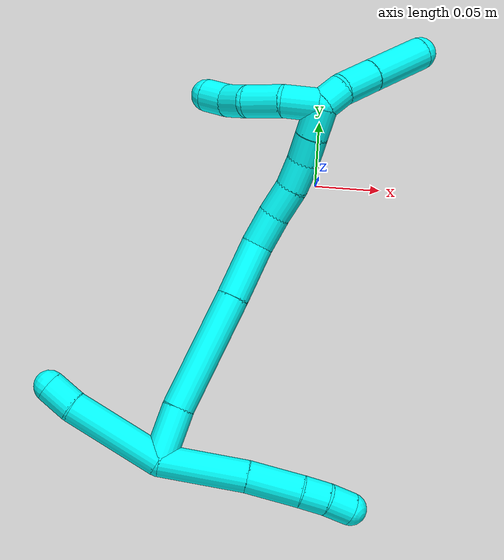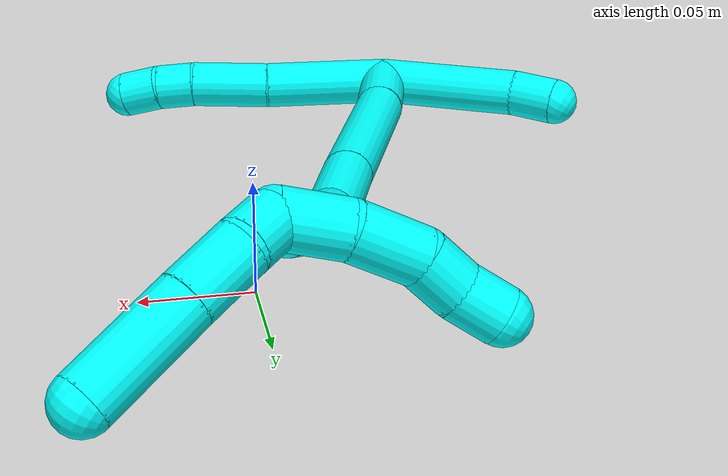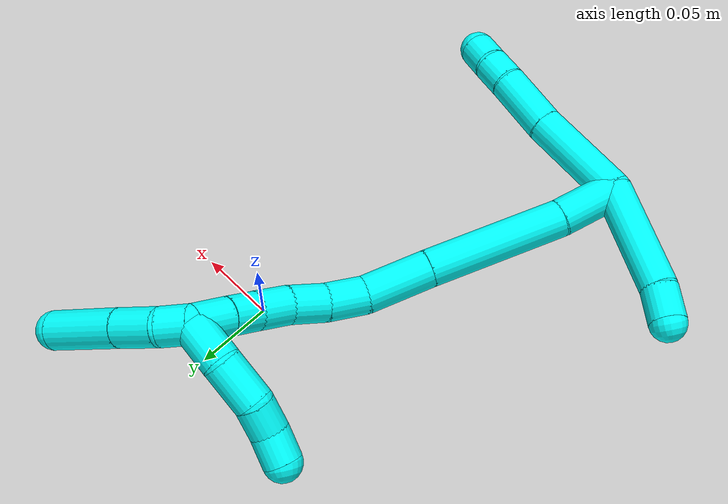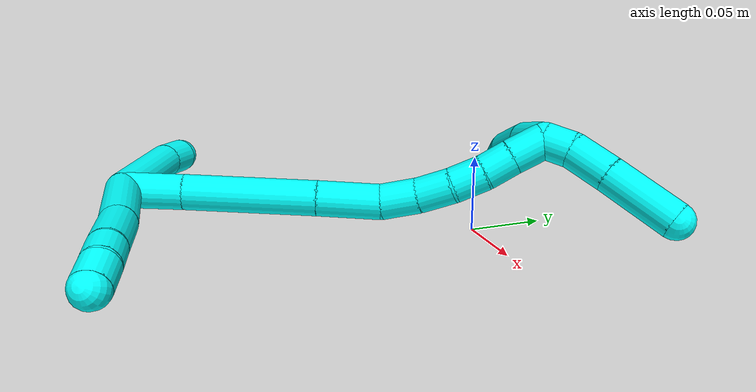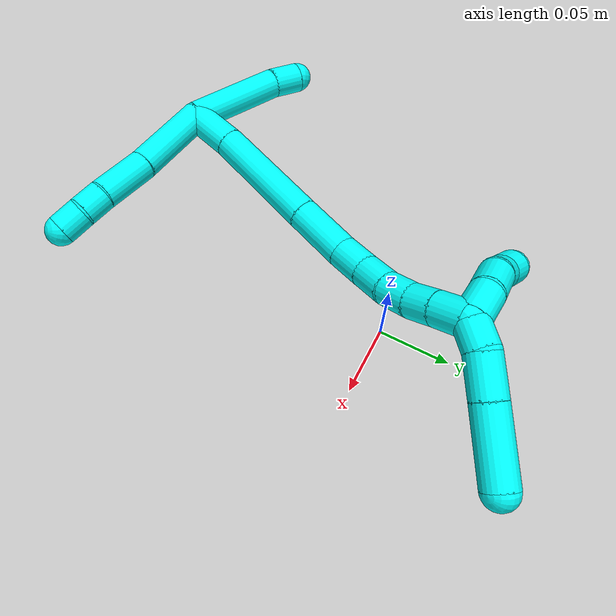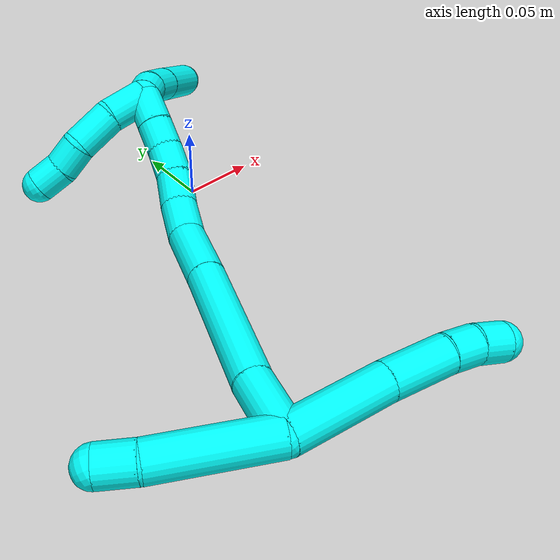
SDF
<sdf version="1.7">
 <world name="default">
  <model name="3">
   <static>0</static>
   <link name="3">
    <collision name="collision-cylinder-e_1_2_8">
     <pose>0.019525 0.006474 0.02667 -0.238147 0.618355 -0.076394</pose>
     <geometry><cylinder><radius>0.0125</radius><length>0.067362</length></cylinder></geometry>
     <surface>
      <friction><ode><mu>1.16</mu><mu2>1.16</mu2><slip1>0</slip1><slip2>0</slip2></ode></friction>
      <contact><ode><kp>1e+06</kp><kd>1</kd><max_vel>0</max_vel><min_depth>0.001</min_depth></ode></contact>
     </surface>
    </collision>
    <visual name="visual-cylinder-e_1_2_8">
     <pose>0.019525 0.006474 0.02667 -0.238147 0.618355 -0.076394</pose>
     <geometry><cylinder><radius>0.0125</radius><length>0.067362</length></cylinder></geometry>
     <material><ambient>0.003922 1 0.996078 1</ambient></material>
    </visual>
    <collision name="collision-cylinder-e_2_8_9">
     <pose>0.050387 0.01563 0.070954 -0.151058 0.566722 -0.044064</pose>
     <geometry><cylinder><radius>0.0125</radius><length>0.042236</length></cylinder></geometry>
     <surface>
      <friction><ode><mu>1.16</mu><mu2>1.16</mu2><slip1>0</slip1><slip2>0</slip2></ode></friction>
      <contact><ode><kp>1e+06</kp><kd>1</kd><max_vel>0</max_vel><min_depth>0.001</min_depth></ode></contact>
     </surface>
    </collision>
    <visual name="visual-cylinder-e_2_8_9">
     <pose>0.050387 0.01563 0.070954 -0.151058 0.566722 -0.044064</pose>
     <geometry><cylinder><radius>0.0125</radius><length>0.042236</length></cylinder></geometry>
     <material><ambient>0.003922 1 0.996078 1</ambient></material>
    </visual>
    <collision name="collision-cylinder-e_3_9_10">
     <pose>0.068022 0.018844 0.096493 -0.067198 0.670247 -0.02341</pose>
     <geometry><cylinder><radius>0.0125</radius><length>0.020273</length></cylinder></geometry>
     <surface>
      <friction><ode><mu>1.16</mu><mu2>1.16</mu2><slip1>0</slip1><slip2>0</slip2></ode></friction>
      <contact><ode><kp>1e+06</kp><kd>1</kd><max_vel>0</max_vel><min_depth>0.001</min_depth></ode></contact>
     </surface>
    </collision>
    <visual name="visual-cylinder-e_3_9_10">
     <pose>0.068022 0.018844 0.096493 -0.067198 0.670247 -0.02341</pose>
     <geometry><cylinder><radius>0.0125</radius><length>0.020273</length></cylinder></geometry>
     <material><ambient>0.003922 1 0.996078 1</ambient></material>
    </visual>
    <collision name="collision-cylinder-e_4_10_6">
     <pose>0.081337 0.018405 0.111565 0.135315 0.771813 0.055046</pose>
     <geometry><cylinder><radius>0.0125</radius><length>0.020128</length></cylinder></geometry>
     <surface>
      <friction><ode><mu>1.16</mu><mu2>1.16</mu2><slip1>0</slip1><slip2>0</slip2></ode></friction>
      <contact><ode><kp>1e+06</kp><kd>1</kd><max_vel>0</max_vel><min_depth>0.001</min_depth></ode></contact>
     </surface>
    </collision>
    <visual name="visual-cylinder-e_4_10_6">
     <pose>0.081337 0.018405 0.111565 0.135315 0.771813 0.055046</pose>
     <geometry><cylinder><radius>0.0125</radius><length>0.020128</length></cylinder></geometry>
     <material><ambient>0.003922 1 0.996078 1</ambient></material>
    </visual>
    <collision name="collision-cylinder-e_1_2_11">
     <pose>-0.017328 0.005443 -0.033568 -2.98084 -0.471258 2.49419</pose>
     <geometry><cylinder><radius>0.0125</radius><length>0.076334</length></cylinder></geometry>
     <surface>
      <friction><ode><mu>1.16</mu><mu2>1.16</mu2><slip1>0</slip1><slip2>0</slip2></ode></friction>
      <contact><ode><kp>1e+06</kp><kd>1</kd><max_vel>0</max_vel><min_depth>0.001</min_depth></ode></contact>
     </surface>
    </collision>
    <visual name="visual-cylinder-e_1_2_11">
     <pose>-0.017328 0.005443 -0.033568 -2.98084 -0.471258 2.49419</pose>
     <geometry><cylinder><radius>0.0125</radius><length>0.076334</length></cylinder></geometry>
     <material><ambient>0.003922 1 0.996078 1</ambient></material>
    </visual>
    <collision name="collision-cylinder-e_2_11_5">
     <pose>-0.038553 0.013898 -0.077896 -2.86865 -0.335632 1.77923</pose>
     <geometry><cylinder><radius>0.0125</radius><length>0.023666</length></cylinder></geometry>
     <surface>
      <friction><ode><mu>1.16</mu><mu2>1.16</mu2><slip1>0</slip1><slip2>0</slip2></ode></friction>
      <contact><ode><kp>1e+06</kp><kd>1</kd><max_vel>0</max_vel><min_depth>0.001</min_depth></ode></contact>
     </surface>
    </collision>
    <visual name="visual-cylinder-e_2_11_5">
     <pose>-0.038553 0.013898 -0.077896 -2.86865 -0.335632 1.77923</pose>
     <geometry><cylinder><radius>0.0125</radius><length>0.023666</length></cylinder></geometry>
     <material><ambient>0.003922 1 0.996078 1</ambient></material>
    </visual>
    <collision name="collision-cylinder-e_1_2_12">
     <pose>0.006999 0.018866 -0.005395 -1.84931 0.342613 -0.451005</pose>
     <geometry><cylinder><radius>0.0125</radius><length>0.041666</length></cylinder></geometry>
     <surface>
      <friction><ode><mu>1.16</mu><mu2>1.16</mu2><slip1>0</slip1><slip2>0</slip2></ode></friction>
      <contact><ode><kp>1e+06</kp><kd>1</kd><max_vel>0</max_vel><min_depth>0.001</min_depth></ode></contact>
     </surface>
    </collision>
    <visual name="visual-cylinder-e_1_2_12">
     <pose>0.006999 0.018866 -0.005395 -1.84931 0.342613 -0.451005</pose>
     <geometry><cylinder><radius>0.0125</radius><length>0.041666</length></cylinder></geometry>
     <material><ambient>0.003922 1 0.996078 1</ambient></material>
    </visual>
    <collision name="collision-cylinder-e_2_12_13">
     <pose>0.031389 0.080462 -0.01804 -1.73888 0.381605 -0.449643</pose>
     <geometry><cylinder><radius>0.0125</radius><length>0.093398</length></cylinder></geometry>
     <surface>
      <friction><ode><mu>1.16</mu><mu2>1.16</mu2><slip1>0</slip1><slip2>0</slip2></ode></friction>
      <contact><ode><kp>1e+06</kp><kd>1</kd><max_vel>0</max_vel><min_depth>0.001</min_depth></ode></contact>
     </surface>
    </collision>
    <visual name="visual-cylinder-e_2_12_13">
     <pose>0.031389 0.080462 -0.01804 -1.73888 0.381605 -0.449643</pose>
     <geometry><cylinder><radius>0.0125</radius><length>0.093398</length></cylinder></geometry>
     <material><ambient>0.003922 1 0.996078 1</ambient></material>
    </visual>
    <collision name="collision-cylinder-e_3_13_14">
     <pose>0.057206 0.143475 -0.029355 -1.76858 0.386789 -0.469166</pose>
     <geometry><cylinder><radius>0.0125</radius><length>0.044675</length></cylinder></geometry>
     <surface>
      <friction><ode><mu>1.16</mu><mu2>1.16</mu2><slip1>0</slip1><slip2>0</slip2></ode></friction>
      <contact><ode><kp>1e+06</kp><kd>1</kd><max_vel>0</max_vel><min_depth>0.001</min_depth></ode></contact>
     </surface>
    </collision>
    <visual name="visual-cylinder-e_3_13_14">
     <pose>0.057206 0.143475 -0.029355 -1.76858 0.386789 -0.469166</pose>
     <geometry><cylinder><radius>0.0125</radius><length>0.044675</length></cylinder></geometry>
     <material><ambient>0.003922 1 0.996078 1</ambient></material>
    </visual>
    <collision name="collision-cylinder-e_4_14_15">
     <pose>0.068278 0.176902 -0.03316 -1.55099 0.198564 -0.194695</pose>
     <geometry><cylinder><radius>0.0125</radius><length>0.026817</length></cylinder></geometry>
     <surface>
      <friction><ode><mu>1.16</mu><mu2>1.16</mu2><slip1>0</slip1><slip2>0</slip2></ode></friction>
      <contact><ode><kp>1e+06</kp><kd>1</kd><max_vel>0</max_vel><min_depth>0.001</min_depth></ode></contact>
     </surface>
    </collision>
    <visual name="visual-cylinder-e_4_14_15">
     <pose>0.068278 0.176902 -0.03316 -1.55099 0.198564 -0.194695</pose>
     <geometry><cylinder><radius>0.0125</radius><length>0.026817</length></cylinder></geometry>
     <material><ambient>0.003922 1 0.996078 1</ambient></material>
    </visual>
    <collision name="collision-cylinder-e_5_15_16">
     <pose>0.072242 0.202286 -0.031123 -1.42671 0.106253 -0.091971</pose>
     <geometry><cylinder><radius>0.0125</radius><length>0.02488</length></cylinder></geometry>
     <surface>
      <friction><ode><mu>1.16</mu><mu2>1.16</mu2><slip1>0</slip1><slip2>0</slip2></ode></friction>
      <contact><ode><kp>1e+06</kp><kd>1</kd><max_vel>0</max_vel><min_depth>0.001</min_depth></ode></contact>
     </surface>
    </collision>
    <visual name="visual-cylinder-e_5_15_16">
     <pose>0.072242 0.202286 -0.031123 -1.42671 0.106253 -0.091971</pose>
     <geometry><cylinder><radius>0.0125</radius><length>0.02488</length></cylinder></geometry>
     <material><ambient>0.003922 1 0.996078 1</ambient></material>
    </visual>
    <collision name="collision-cylinder-e_6_16_17">
     <pose>0.073351 0.22593 -0.02903 -1.54303 -0.018403 0.017899</pose>
     <geometry><cylinder><radius>0.0125</radius><length>0.022818</length></cylinder></geometry>
     <surface>
      <friction><ode><mu>1.16</mu><mu2>1.16</mu2><slip1>0</slip1><slip2>0</slip2></ode></friction>
      <contact><ode><kp>1e+06</kp><kd>1</kd><max_vel>0</max_vel><min_depth>0.001</min_depth></ode></contact>
     </surface>
    </collision>
    <visual name="visual-cylinder-e_6_16_17">
     <pose>0.073351 0.22593 -0.02903 -1.54303 -0.018403 0.017899</pose>
     <geometry><cylinder><radius>0.0125</radius><length>0.022818</length></cylinder></geometry>
     <material><ambient>0.003922 1 0.996078 1</ambient></material>
    </visual>
    <collision name="collision-cylinder-e_7_17_18">
     <pose>0.071481 0.247725 -0.0285 -1.55023 -0.158375 0.155165</pose>
     <geometry><cylinder><radius>0.0125</radius><length>0.021053</length></cylinder></geometry>
     <surface>
      <friction><ode><mu>1.16</mu><mu2>1.16</mu2><slip1>0</slip1><slip2>0</slip2></ode></friction>
      <contact><ode><kp>1e+06</kp><kd>1</kd><max_vel>0</max_vel><min_depth>0.001</min_depth></ode></contact>
     </surface>
    </collision>
    <visual name="visual-cylinder-e_7_17_18">
     <pose>0.071481 0.247725 -0.0285 -1.55023 -0.158375 0.155165</pose>
     <geometry><cylinder><radius>0.0125</radius><length>0.021053</length></cylinder></geometry>
     <material><ambient>0.003922 1 0.996078 1</ambient></material>
    </visual>
    <collision name="collision-cylinder-e_8_18_1">
     <pose>0.068388 0.27038 -0.028299 -1.57181 -0.116345 0.116462</pose>
     <geometry><cylinder><radius>0.0125</radius><length>0.024692</length></cylinder></geometry>
     <surface>
      <friction><ode><mu>1.16</mu><mu2>1.16</mu2><slip1>0</slip1><slip2>0</slip2></ode></friction>
      <contact><ode><kp>1e+06</kp><kd>1</kd><max_vel>0</max_vel><min_depth>0.001</min_depth></ode></contact>
     </surface>
    </collision>
    <visual name="visual-cylinder-e_8_18_1">
     <pose>0.068388 0.27038 -0.028299 -1.57181 -0.116345 0.116462</pose>
     <geometry><cylinder><radius>0.0125</radius><length>0.024692</length></cylinder></geometry>
     <material><ambient>0.003922 1 0.996078 1</ambient></material>
    </visual>
    <collision name="collision-cylinder-e_1_1_19">
     <pose>0.073789 0.289863 -0.027191 -1.41693 0.752051 -0.652426</pose>
     <geometry><cylinder><radius>0.0125</radius><length>0.020009</length></cylinder></geometry>
     <surface>
      <friction><ode><mu>1.16</mu><mu2>1.16</mu2><slip1>0</slip1><slip2>0</slip2></ode></friction>
      <contact><ode><kp>1e+06</kp><kd>1</kd><max_vel>0</max_vel><min_depth>0.001</min_depth></ode></contact>
     </surface>
    </collision>
    <visual name="visual-cylinder-e_1_1_19">
     <pose>0.073789 0.289863 -0.027191 -1.41693 0.752051 -0.652426</pose>
     <geometry><cylinder><radius>0.0125</radius><length>0.020009</length></cylinder></geometry>
     <material><ambient>0.003922 1 0.996078 1</ambient></material>
    </visual>
    <collision name="collision-cylinder-e_2_19_20">
     <pose>0.092975 0.304639 -0.023951 -1.29722 1.00474 -0.7892</pose>
     <geometry><cylinder><radius>0.0125</radius><length>0.029269</length></cylinder></geometry>
     <surface>
      <friction><ode><mu>1.16</mu><mu2>1.16</mu2><slip1>0</slip1><slip2>0</slip2></ode></friction>
      <contact><ode><kp>1e+06</kp><kd>1</kd><max_vel>0</max_vel><min_depth>0.001</min_depth></ode></contact>
     </surface>
    </collision>
    <visual name="visual-cylinder-e_2_19_20">
     <pose>0.092975 0.304639 -0.023951 -1.29722 1.00474 -0.7892</pose>
     <geometry><cylinder><radius>0.0125</radius><length>0.029269</length></cylinder></geometry>
     <material><ambient>0.003922 1 0.996078 1</ambient></material>
    </visual>
    <collision name="collision-cylinder-e_3_20_4">
     <pose>0.12707 0.324834 -0.018558 -1.31743 1.0301 -0.825852</pose>
     <geometry><cylinder><radius>0.0125</radius><length>0.050722</length></cylinder></geometry>
     <surface>
      <friction><ode><mu>1.16</mu><mu2>1.16</mu2><slip1>0</slip1><slip2>0</slip2></ode></friction>
      <contact><ode><kp>1e+06</kp><kd>1</kd><max_vel>0</max_vel><min_depth>0.001</min_depth></ode></contact>
     </surface>
    </collision>
    <visual name="visual-cylinder-e_3_20_4">
     <pose>0.12707 0.324834 -0.018558 -1.31743 1.0301 -0.825852</pose>
     <geometry><cylinder><radius>0.0125</radius><length>0.050722</length></cylinder></geometry>
     <material><ambient>0.003922 1 0.996078 1</ambient></material>
    </visual>
    <collision name="collision-cylinder-e_1_1_21">
     <pose>0.061394 0.278269 -0.041004 2.80974 -0.39267 -1.74195</pose>
     <geometry><cylinder><radius>0.0125</radius><length>0.029064</length></cylinder></geometry>
     <surface>
      <friction><ode><mu>1.16</mu><mu2>1.16</mu2><slip1>0</slip1><slip2>0</slip2></ode></friction>
      <contact><ode><kp>1e+06</kp><kd>1</kd><max_vel>0</max_vel><min_depth>0.001</min_depth></ode></contact>
     </surface>
    </collision>
    <visual name="visual-cylinder-e_1_1_21">
     <pose>0.061394 0.278269 -0.041004 2.80974 -0.39267 -1.74195</pose>
     <geometry><cylinder><radius>0.0125</radius><length>0.029064</length></cylinder></geometry>
     <material><ambient>0.003922 1 0.996078 1</ambient></material>
    </visual>
    <collision name="collision-cylinder-e_2_21_22">
     <pose>0.053241 0.267567 -0.067245 2.70466 -0.171665 -0.739484</pose>
     <geometry><cylinder><radius>0.0125</radius><length>0.030351</length></cylinder></geometry>
     <surface>
      <friction><ode><mu>1.16</mu><mu2>1.16</mu2><slip1>0</slip1><slip2>0</slip2></ode></friction>
      <contact><ode><kp>1e+06</kp><kd>1</kd><max_vel>0</max_vel><min_depth>0.001</min_depth></ode></contact>
     </surface>
    </collision>
    <visual name="visual-cylinder-e_2_21_22">
     <pose>0.053241 0.267567 -0.067245 2.70466 -0.171665 -0.739484</pose>
     <geometry><cylinder><radius>0.0125</radius><length>0.030351</length></cylinder></geometry>
     <material><ambient>0.003922 1 0.996078 1</ambient></material>
    </visual>
    <collision name="collision-cylinder-e_3_22_23">
     <pose>0.052219 0.257539 -0.09014 2.76454 0.154928 0.772756</pose>
     <geometry><cylinder><radius>0.0125</radius><length>0.02035</length></cylinder></geometry>
     <surface>
      <friction><ode><mu>1.16</mu><mu2>1.16</mu2><slip1>0</slip1><slip2>0</slip2></ode></friction>
      <contact><ode><kp>1e+06</kp><kd>1</kd><max_vel>0</max_vel><min_depth>0.001</min_depth></ode></contact>
     </surface>
    </collision>
    <visual name="visual-cylinder-e_3_22_23">
     <pose>0.052219 0.257539 -0.09014 2.76454 0.154928 0.772756</pose>
     <geometry><cylinder><radius>0.0125</radius><length>0.02035</length></cylinder></geometry>
     <material><ambient>0.003922 1 0.996078 1</ambient></material>
    </visual>
    <collision name="collision-cylinder-e_4_23_3">
     <pose>0.053419 0.2517 -0.109369 2.92863 -0.036587 -0.339054</pose>
     <geometry><cylinder><radius>0.0125</radius><length>0.020235</length></cylinder></geometry>
     <surface>
      <friction><ode><mu>1.16</mu><mu2>1.16</mu2><slip1>0</slip1><slip2>0</slip2></ode></friction>
      <contact><ode><kp>1e+06</kp><kd>1</kd><max_vel>0</max_vel><min_depth>0.001</min_depth></ode></contact>
     </surface>
    </collision>
    <visual name="visual-cylinder-e_4_23_3">
     <pose>0.053419 0.2517 -0.109369 2.92863 -0.036587 -0.339054</pose>
     <geometry><cylinder><radius>0.0125</radius><length>0.020235</length></cylinder></geometry>
     <material><ambient>0.003922 1 0.996078 1</ambient></material>
    </visual>
    <collision name="collision-sphere-3">
     <pose>0.053048 0.249563 -0.119252 0 -0 0</pose>
     <geometry><sphere><radius>0.0125</radius></sphere></geometry>
     <surface>
      <friction><ode><mu>1.16</mu><mu2>1.16</mu2><slip1>0</slip1><slip2>0</slip2></ode></friction>
      <contact><ode><kp>1e+06</kp><kd>1</kd><max_vel>0</max_vel><min_depth>0.001</min_depth></ode></contact>
     </surface>
    </collision>
    <visual name="visual-sphere-3">
     <pose>0.053048 0.249563 -0.119252 0 -0 0</pose>
     <geometry><sphere><radius>0.0125</radius></sphere></geometry>
     <material><ambient>0.003922 1 0.996078 1</ambient></material>
    </visual>
    <collision name="collision-sphere-23">
     <pose>0.053789 0.253837 -0.099487 0 -0 0</pose>
     <geometry><sphere><radius>0.0125</radius></sphere></geometry>
     <surface>
      <friction><ode><mu>1.16</mu><mu2>1.16</mu2><slip1>0</slip1><slip2>0</slip2></ode></friction>
      <contact><ode><kp>1e+06</kp><kd>1</kd><max_vel>0</max_vel><min_depth>0.001</min_depth></ode></contact>
     </surface>
    </collision>
    <visual name="visual-sphere-23">
     <pose>0.053789 0.253837 -0.099487 0 -0 0</pose>
     <geometry><sphere><radius>0.0125</radius></sphere></geometry>
     <material><ambient>0.003922 1 0.996078 1</ambient></material>
    </visual>
    <collision name="collision-sphere-22">
     <pose>0.050648 0.26124 -0.080793 0 -0 0</pose>
     <geometry><sphere><radius>0.0125</radius></sphere></geometry>
     <surface>
      <friction><ode><mu>1.16</mu><mu2>1.16</mu2><slip1>0</slip1><slip2>0</slip2></ode></friction>
      <contact><ode><kp>1e+06</kp><kd>1</kd><max_vel>0</max_vel><min_depth>0.001</min_depth></ode></contact>
     </surface>
    </collision>
    <visual name="visual-sphere-22">
     <pose>0.050648 0.26124 -0.080793 0 -0 0</pose>
     <geometry><sphere><radius>0.0125</radius></sphere></geometry>
     <material><ambient>0.003922 1 0.996078 1</ambient></material>
    </visual>
    <collision name="collision-sphere-21">
     <pose>0.055833 0.273895 -0.053698 0 -0 0</pose>
     <geometry><sphere><radius>0.0125</radius></sphere></geometry>
     <surface>
      <friction><ode><mu>1.16</mu><mu2>1.16</mu2><slip1>0</slip1><slip2>0</slip2></ode></friction>
      <contact><ode><kp>1e+06</kp><kd>1</kd><max_vel>0</max_vel><min_depth>0.001</min_depth></ode></contact>
     </surface>
    </collision>
    <visual name="visual-sphere-21">
     <pose>0.055833 0.273895 -0.053698 0 -0 0</pose>
     <geometry><sphere><radius>0.0125</radius></sphere></geometry>
     <material><ambient>0.003922 1 0.996078 1</ambient></material>
    </visual>
    <collision name="collision-sphere-4">
     <pose>0.148814 0.337471 -0.015286 0 -0 0</pose>
     <geometry><sphere><radius>0.0125</radius></sphere></geometry>
     <surface>
      <friction><ode><mu>1.16</mu><mu2>1.16</mu2><slip1>0</slip1><slip2>0</slip2></ode></friction>
      <contact><ode><kp>1e+06</kp><kd>1</kd><max_vel>0</max_vel><min_depth>0.001</min_depth></ode></contact>
     </surface>
    </collision>
    <visual name="visual-sphere-4">
     <pose>0.148814 0.337471 -0.015286 0 -0 0</pose>
     <geometry><sphere><radius>0.0125</radius></sphere></geometry>
     <material><ambient>0.003922 1 0.996078 1</ambient></material>
    </visual>
    <collision name="collision-sphere-20">
     <pose>0.105327 0.312196 -0.021831 0 -0 0</pose>
     <geometry><sphere><radius>0.0125</radius></sphere></geometry>
     <surface>
      <friction><ode><mu>1.16</mu><mu2>1.16</mu2><slip1>0</slip1><slip2>0</slip2></ode></friction>
      <contact><ode><kp>1e+06</kp><kd>1</kd><max_vel>0</max_vel><min_depth>0.001</min_depth></ode></contact>
     </surface>
    </collision>
    <visual name="visual-sphere-20">
     <pose>0.105327 0.312196 -0.021831 0 -0 0</pose>
     <geometry><sphere><radius>0.0125</radius></sphere></geometry>
     <material><ambient>0.003922 1 0.996078 1</ambient></material>
    </visual>
    <collision name="collision-sphere-11">
     <pose>-0.034656 0.010886 -0.067136 0 -0 0</pose>
     <geometry><sphere><radius>0.0125</radius></sphere></geometry>
     <surface>
      <friction><ode><mu>1.16</mu><mu2>1.16</mu2><slip1>0</slip1><slip2>0</slip2></ode></friction>
      <contact><ode><kp>1e+06</kp><kd>1</kd><max_vel>0</max_vel><min_depth>0.001</min_depth></ode></contact>
     </surface>
    </collision>
    <visual name="visual-sphere-11">
     <pose>-0.034656 0.010886 -0.067136 0 -0 0</pose>
     <geometry><sphere><radius>0.0125</radius></sphere></geometry>
     <material><ambient>0.003922 1 0.996078 1</ambient></material>
    </visual>
    <collision name="collision-sphere-6">
     <pose>0.088356 0.017432 0.118712 0 -0 0</pose>
     <geometry><sphere><radius>0.0125</radius></sphere></geometry>
     <surface>
      <friction><ode><mu>1.16</mu><mu2>1.16</mu2><slip1>0</slip1><slip2>0</slip2></ode></friction>
      <contact><ode><kp>1e+06</kp><kd>1</kd><max_vel>0</max_vel><min_depth>0.001</min_depth></ode></contact>
     </surface>
    </collision>
    <visual name="visual-sphere-6">
     <pose>0.088356 0.017432 0.118712 0 -0 0</pose>
     <geometry><sphere><radius>0.0125</radius></sphere></geometry>
     <material><ambient>0.003922 1 0.996078 1</ambient></material>
    </visual>
    <collision name="collision-sphere-10">
     <pose>0.074318 0.019377 0.104419 0 -0 0</pose>
     <geometry><sphere><radius>0.0125</radius></sphere></geometry>
     <surface>
      <friction><ode><mu>1.16</mu><mu2>1.16</mu2><slip1>0</slip1><slip2>0</slip2></ode></friction>
      <contact><ode><kp>1e+06</kp><kd>1</kd><max_vel>0</max_vel><min_depth>0.001</min_depth></ode></contact>
     </surface>
    </collision>
    <visual name="visual-sphere-10">
     <pose>0.074318 0.019377 0.104419 0 -0 0</pose>
     <geometry><sphere><radius>0.0125</radius></sphere></geometry>
     <material><ambient>0.003922 1 0.996078 1</ambient></material>
    </visual>
    <collision name="collision-sphere-9">
     <pose>0.061725 0.018311 0.088567 0 -0 0</pose>
     <geometry><sphere><radius>0.0125</radius></sphere></geometry>
     <surface>
      <friction><ode><mu>1.16</mu><mu2>1.16</mu2><slip1>0</slip1><slip2>0</slip2></ode></friction>
      <contact><ode><kp>1e+06</kp><kd>1</kd><max_vel>0</max_vel><min_depth>0.001</min_depth></ode></contact>
     </surface>
    </collision>
    <visual name="visual-sphere-9">
     <pose>0.061725 0.018311 0.088567 0 -0 0</pose>
     <geometry><sphere><radius>0.0125</radius></sphere></geometry>
     <material><ambient>0.003922 1 0.996078 1</ambient></material>
    </visual>
    <collision name="collision-sphere-2">
     <geometry><sphere><radius>0.0125</radius></sphere></geometry>
     <surface>
      <friction><ode><mu>1.16</mu><mu2>1.16</mu2><slip1>0</slip1><slip2>0</slip2></ode></friction>
      <contact><ode><kp>1e+06</kp><kd>1</kd><max_vel>0</max_vel><min_depth>0.001</min_depth></ode></contact>
     </surface>
    </collision>
    <visual name="visual-sphere-2">
     <geometry><sphere><radius>0.0125</radius></sphere></geometry>
     <material><ambient>0.003922 1 0.996078 1</ambient></material>
    </visual>
    <collision name="collision-sphere-19">
     <pose>0.080624 0.297083 -0.026071 0 -0 0</pose>
     <geometry><sphere><radius>0.0125</radius></sphere></geometry>
     <surface>
      <friction><ode><mu>1.16</mu><mu2>1.16</mu2><slip1>0</slip1><slip2>0</slip2></ode></friction>
      <contact><ode><kp>1e+06</kp><kd>1</kd><max_vel>0</max_vel><min_depth>0.001</min_depth></ode></contact>
     </surface>
    </collision>
    <visual name="visual-sphere-19">
     <pose>0.080624 0.297083 -0.026071 0 -0 0</pose>
     <geometry><sphere><radius>0.0125</radius></sphere></geometry>
     <material><ambient>0.003922 1 0.996078 1</ambient></material>
    </visual>
    <collision name="collision-sphere-8">
     <pose>0.03905 0.012948 0.05334 0 -0 0</pose>
     <geometry><sphere><radius>0.0125</radius></sphere></geometry>
     <surface>
      <friction><ode><mu>1.16</mu><mu2>1.16</mu2><slip1>0</slip1><slip2>0</slip2></ode></friction>
      <contact><ode><kp>1e+06</kp><kd>1</kd><max_vel>0</max_vel><min_depth>0.001</min_depth></ode></contact>
     </surface>
    </collision>
    <visual name="visual-sphere-8">
     <pose>0.03905 0.012948 0.05334 0 -0 0</pose>
     <geometry><sphere><radius>0.0125</radius></sphere></geometry>
     <material><ambient>0.003922 1 0.996078 1</ambient></material>
    </visual>
    <collision name="collision-sphere-5">
     <pose>-0.042451 0.01691 -0.088655 0 -0 0</pose>
     <geometry><sphere><radius>0.0125</radius></sphere></geometry>
     <surface>
      <friction><ode><mu>1.16</mu><mu2>1.16</mu2><slip1>0</slip1><slip2>0</slip2></ode></friction>
      <contact><ode><kp>1e+06</kp><kd>1</kd><max_vel>0</max_vel><min_depth>0.001</min_depth></ode></contact>
     </surface>
    </collision>
    <visual name="visual-sphere-5">
     <pose>-0.042451 0.01691 -0.088655 0 -0 0</pose>
     <geometry><sphere><radius>0.0125</radius></sphere></geometry>
     <material><ambient>0.003922 1 0.996078 1</ambient></material>
    </visual>
    <collision name="collision-sphere-12">
     <pose>0.013998 0.037732 -0.010789 0 -0 0</pose>
     <geometry><sphere><radius>0.0125</radius></sphere></geometry>
     <surface>
      <friction><ode><mu>1.16</mu><mu2>1.16</mu2><slip1>0</slip1><slip2>0</slip2></ode></friction>
      <contact><ode><kp>1e+06</kp><kd>1</kd><max_vel>0</max_vel><min_depth>0.001</min_depth></ode></contact>
     </surface>
    </collision>
    <visual name="visual-sphere-12">
     <pose>0.013998 0.037732 -0.010789 0 -0 0</pose>
     <geometry><sphere><radius>0.0125</radius></sphere></geometry>
     <material><ambient>0.003922 1 0.996078 1</ambient></material>
    </visual>
    <collision name="collision-sphere-13">
     <pose>0.04878 0.123191 -0.02529 0 -0 0</pose>
     <geometry><sphere><radius>0.0125</radius></sphere></geometry>
     <surface>
      <friction><ode><mu>1.16</mu><mu2>1.16</mu2><slip1>0</slip1><slip2>0</slip2></ode></friction>
      <contact><ode><kp>1e+06</kp><kd>1</kd><max_vel>0</max_vel><min_depth>0.001</min_depth></ode></contact>
     </surface>
    </collision>
    <visual name="visual-sphere-13">
     <pose>0.04878 0.123191 -0.02529 0 -0 0</pose>
     <geometry><sphere><radius>0.0125</radius></sphere></geometry>
     <material><ambient>0.003922 1 0.996078 1</ambient></material>
    </visual>
    <collision name="collision-sphere-14">
     <pose>0.065633 0.163759 -0.03342 0 -0 0</pose>
     <geometry><sphere><radius>0.0125</radius></sphere></geometry>
     <surface>
      <friction><ode><mu>1.16</mu><mu2>1.16</mu2><slip1>0</slip1><slip2>0</slip2></ode></friction>
      <contact><ode><kp>1e+06</kp><kd>1</kd><max_vel>0</max_vel><min_depth>0.001</min_depth></ode></contact>
     </surface>
    </collision>
    <visual name="visual-sphere-14">
     <pose>0.065633 0.163759 -0.03342 0 -0 0</pose>
     <geometry><sphere><radius>0.0125</radius></sphere></geometry>
     <material><ambient>0.003922 1 0.996078 1</ambient></material>
    </visual>
    <collision name="collision-sphere-15">
     <pose>0.070923 0.190044 -0.032899 0 -0 0</pose>
     <geometry><sphere><radius>0.0125</radius></sphere></geometry>
     <surface>
      <friction><ode><mu>1.16</mu><mu2>1.16</mu2><slip1>0</slip1><slip2>0</slip2></ode></friction>
      <contact><ode><kp>1e+06</kp><kd>1</kd><max_vel>0</max_vel><min_depth>0.001</min_depth></ode></contact>
     </surface>
    </collision>
    <visual name="visual-sphere-15">
     <pose>0.070923 0.190044 -0.032899 0 -0 0</pose>
     <geometry><sphere><radius>0.0125</radius></sphere></geometry>
     <material><ambient>0.003922 1 0.996078 1</ambient></material>
    </visual>
    <collision name="collision-sphere-16">
     <pose>0.073561 0.214528 -0.029347 0 -0 0</pose>
     <geometry><sphere><radius>0.0125</radius></sphere></geometry>
     <surface>
      <friction><ode><mu>1.16</mu><mu2>1.16</mu2><slip1>0</slip1><slip2>0</slip2></ode></friction>
      <contact><ode><kp>1e+06</kp><kd>1</kd><max_vel>0</max_vel><min_depth>0.001</min_depth></ode></contact>
     </surface>
    </collision>
    <visual name="visual-sphere-16">
     <pose>0.073561 0.214528 -0.029347 0 -0 0</pose>
     <geometry><sphere><radius>0.0125</radius></sphere></geometry>
     <material><ambient>0.003922 1 0.996078 1</ambient></material>
    </visual>
    <collision name="collision-sphere-17">
     <pose>0.073141 0.237333 -0.028714 0 -0 0</pose>
     <geometry><sphere><radius>0.0125</radius></sphere></geometry>
     <surface>
      <friction><ode><mu>1.16</mu><mu2>1.16</mu2><slip1>0</slip1><slip2>0</slip2></ode></friction>
      <contact><ode><kp>1e+06</kp><kd>1</kd><max_vel>0</max_vel><min_depth>0.001</min_depth></ode></contact>
     </surface>
    </collision>
    <visual name="visual-sphere-17">
     <pose>0.073141 0.237333 -0.028714 0 -0 0</pose>
     <geometry><sphere><radius>0.0125</radius></sphere></geometry>
     <material><ambient>0.003922 1 0.996078 1</ambient></material>
    </visual>
    <collision name="collision-sphere-18">
     <pose>0.069821 0.258118 -0.028286 0 -0 0</pose>
     <geometry><sphere><radius>0.0125</radius></sphere></geometry>
     <surface>
      <friction><ode><mu>1.16</mu><mu2>1.16</mu2><slip1>0</slip1><slip2>0</slip2></ode></friction>
      <contact><ode><kp>1e+06</kp><kd>1</kd><max_vel>0</max_vel><min_depth>0.001</min_depth></ode></contact>
     </surface>
    </collision>
    <visual name="visual-sphere-18">
     <pose>0.069821 0.258118 -0.028286 0 -0 0</pose>
     <geometry><sphere><radius>0.0125</radius></sphere></geometry>
     <material><ambient>0.003922 1 0.996078 1</ambient></material>
    </visual>
    <collision name="collision-sphere-1">
     <pose>0.066955 0.282643 -0.028311 0 -0 0</pose>
     <geometry><sphere><radius>0.0125</radius></sphere></geometry>
     <surface>
      <friction><ode><mu>1.16</mu><mu2>1.16</mu2><slip1>0</slip1><slip2>0</slip2></ode></friction>
      <contact><ode><kp>1e+06</kp><kd>1</kd><max_vel>0</max_vel><min_depth>0.001</min_depth></ode></contact>
     </surface>
    </collision>
    <visual name="visual-sphere-1">
     <pose>0.066955 0.282643 -0.028311 0 -0 0</pose>
     <geometry><sphere><radius>0.0125</radius></sphere></geometry>
     <material><ambient>0.003922 1 0.996078 1</ambient></material>
    </visual>
    <inertial>
     <pose>0.046248 0.135817 -0.015631 0 -0 0</pose>
     <mass>0.75</mass>
     <inertia>
      <ixx>8.6e-05</ixx>
      <ixy>0</ixy>
      <ixz>0</ixz>
      <iyy>8.3e-05</iyy>
      <iyz>0</iyz>
      <izz>-0.000165</izz>
     </inertia>
    </inertial>
   </link>
   <pose>-0.104537 -0.217939 0.019849 0.659493 0.926601 0.225165</pose>
  </model>
 </world>
</sdf>
